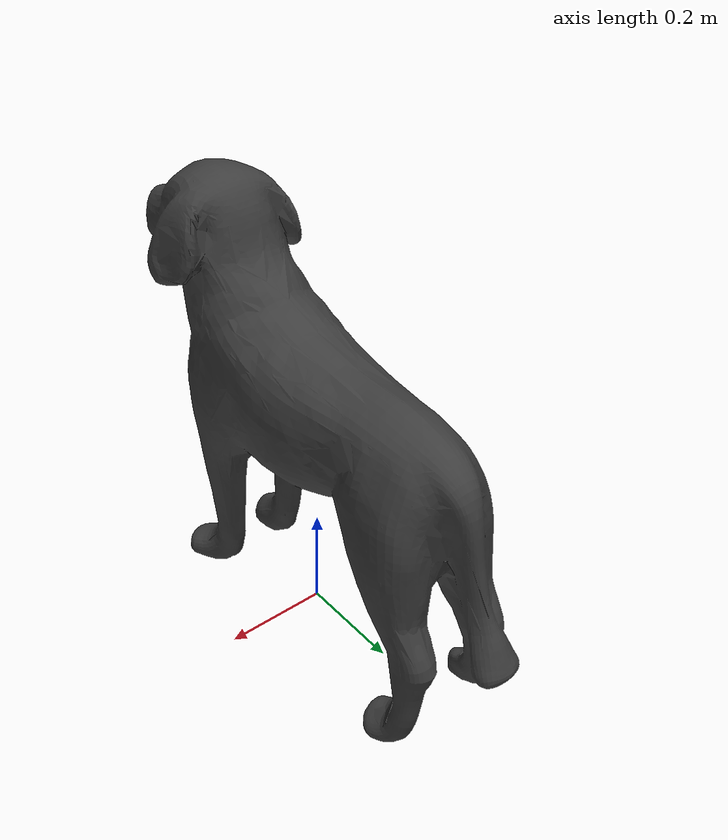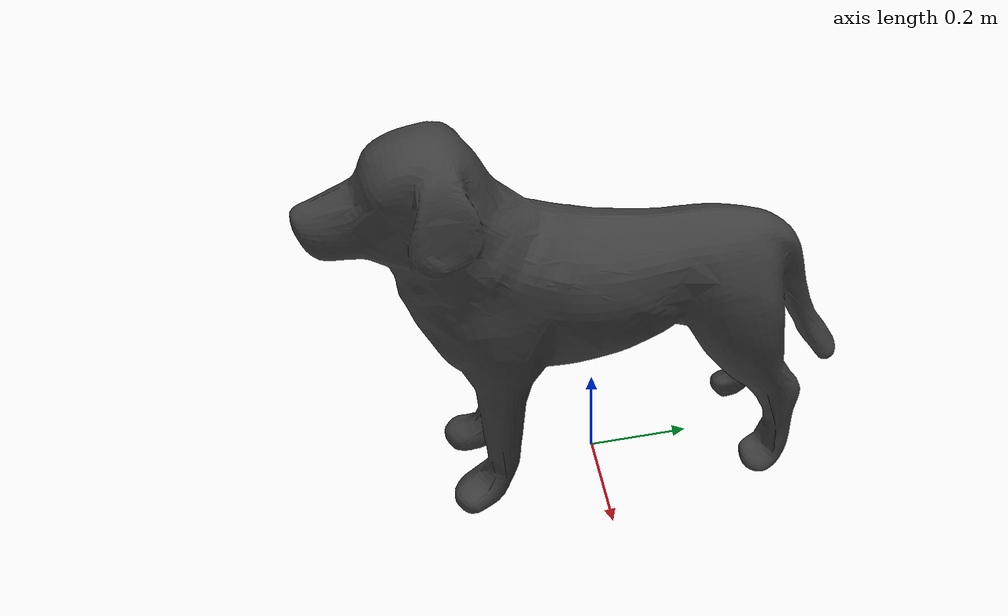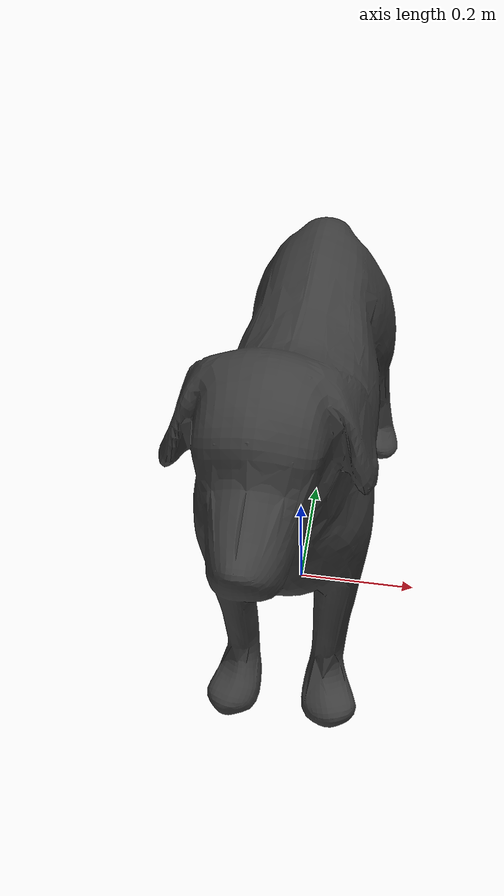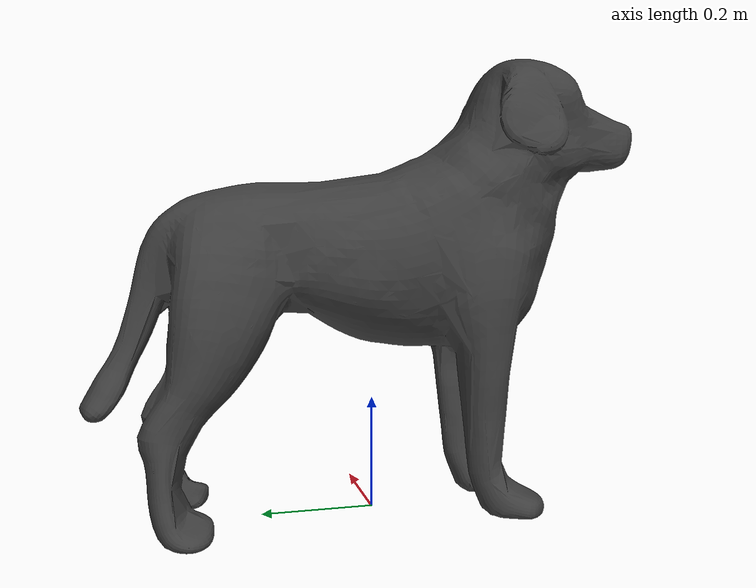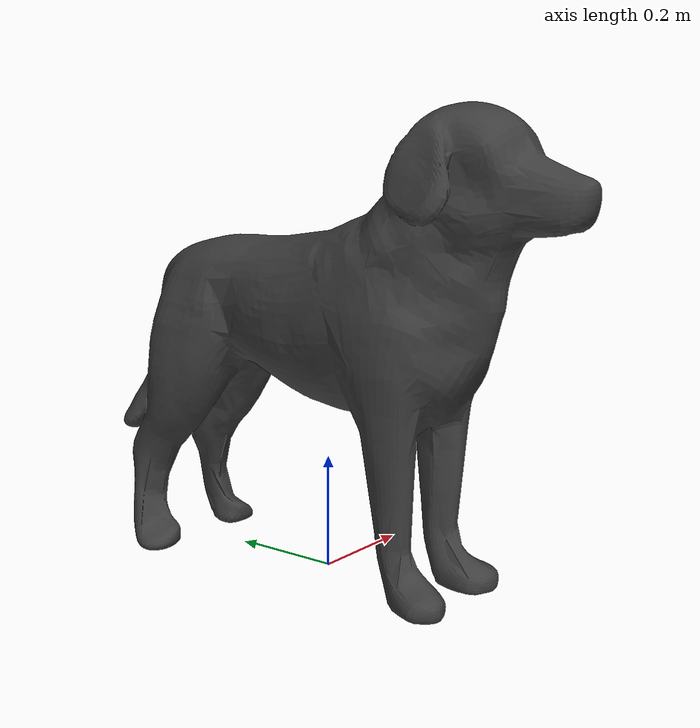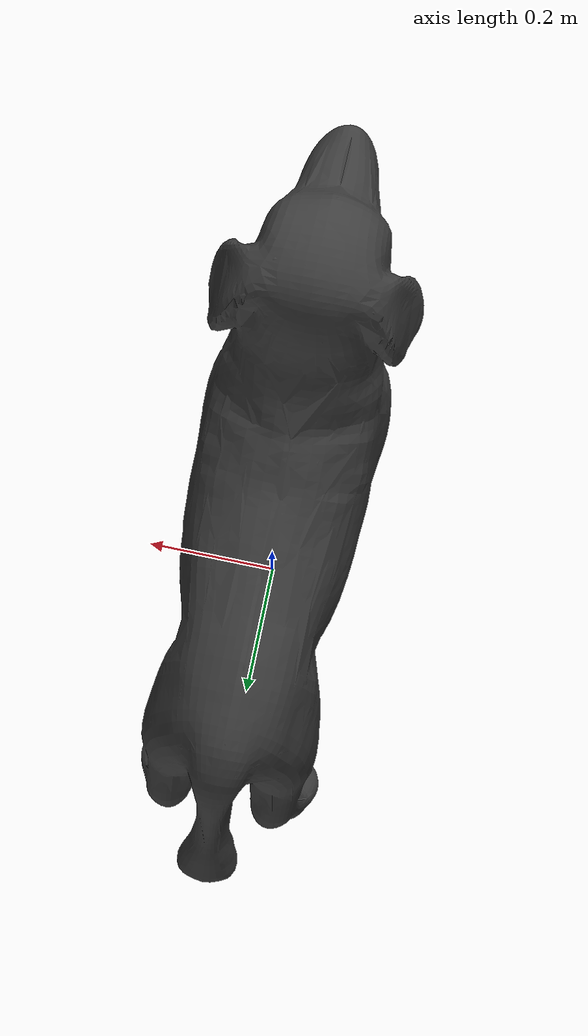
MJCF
<mujoco model="dustbin_pink">
  <asset>
  <texture file="/Users/hyunw3/robotics/robotics-safety/benchmark/robosuite/robosuite/models/assets/textures/ceramic.png" name="tex-dustbin_pink" type="2d" />
  <material name="dustbin_pink" reflectance="0.5" texrepeat="1 1" texture="tex-dustbin_pink" texuniform="false" />
  <mesh file="visual/model_normalized_0.obj" name="model_normalized_0_vis" scale="1.0 1.0 1.0" /><mesh file="collision/model_normalized_collision_22.obj" name="model_normalized_collision_22._coll" scale="1.0 1.0 1.0" /><mesh file="collision/model_normalized_collision_23.obj" name="model_normalized_collision_23._coll" scale="1.0 1.0 1.0" /><mesh file="collision/model_normalized_collision_21.obj" name="model_normalized_collision_21._coll" scale="1.0 1.0 1.0" /><mesh file="collision/model_normalized_collision_20.obj" name="model_normalized_collision_20._coll" scale="1.0 1.0 1.0" /><mesh file="collision/model_normalized_collision_24.obj" name="model_normalized_collision_24._coll" scale="1.0 1.0 1.0" /><mesh file="collision/model_normalized_collision_30.obj" name="model_normalized_collision_30._coll" scale="1.0 1.0 1.0" /><mesh file="collision/model_normalized_collision_18.obj" name="model_normalized_collision_18._coll" scale="1.0 1.0 1.0" /><mesh file="collision/model_normalized_collision_19.obj" name="model_normalized_collision_19._coll" scale="1.0 1.0 1.0" /><mesh file="collision/model_normalized_collision_31.obj" name="model_normalized_collision_31._coll" scale="1.0 1.0 1.0" /><mesh file="collision/model_normalized_collision_25.obj" name="model_normalized_collision_25._coll" scale="1.0 1.0 1.0" /><mesh file="collision/model_normalized_collision_27.obj" name="model_normalized_collision_27._coll" scale="1.0 1.0 1.0" /><mesh file="collision/model_normalized_collision_26.obj" name="model_normalized_collision_26._coll" scale="1.0 1.0 1.0" /><mesh file="collision/model_normalized_collision_9.obj" name="model_normalized_collision_9._coll" scale="1.0 1.0 1.0" /><mesh file="collision/model_normalized_collision_8.obj" name="model_normalized_collision_8._coll" scale="1.0 1.0 1.0" /><mesh file="collision/model_normalized_collision_6.obj" name="model_normalized_collision_6._coll" scale="1.0 1.0 1.0" /><mesh file="collision/model_normalized_collision_7.obj" name="model_normalized_collision_7._coll" scale="1.0 1.0 1.0" /><mesh file="collision/model_normalized_collision_5.obj" name="model_normalized_collision_5._coll" scale="1.0 1.0 1.0" /><mesh file="collision/model_normalized_collision_4.obj" name="model_normalized_collision_4._coll" scale="1.0 1.0 1.0" /><mesh file="collision/model_normalized_collision_0.obj" name="model_normalized_collision_0._coll" scale="1.0 1.0 1.0" /><mesh file="collision/model_normalized_collision_1.obj" name="model_normalized_collision_1._coll" scale="1.0 1.0 1.0" /><mesh file="collision/model_normalized_collision_3.obj" name="model_normalized_collision_3._coll" scale="1.0 1.0 1.0" /><mesh file="collision/model_normalized_collision_2.obj" name="model_normalized_collision_2._coll" scale="1.0 1.0 1.0" /><mesh file="collision/model_normalized_collision_17.obj" name="model_normalized_collision_17._coll" scale="1.0 1.0 1.0" /><mesh file="collision/model_normalized_collision_16.obj" name="model_normalized_collision_16._coll" scale="1.0 1.0 1.0" /><mesh file="collision/model_normalized_collision_28.obj" name="model_normalized_collision_28._coll" scale="1.0 1.0 1.0" /><mesh file="collision/model_normalized_collision_14.obj" name="model_normalized_collision_14._coll" scale="1.0 1.0 1.0" /><mesh file="collision/model_normalized_collision_15.obj" name="model_normalized_collision_15._coll" scale="1.0 1.0 1.0" /><mesh file="collision/model_normalized_collision_29.obj" name="model_normalized_collision_29._coll" scale="1.0 1.0 1.0" /><mesh file="collision/model_normalized_collision_11.obj" name="model_normalized_collision_11._coll" scale="1.0 1.0 1.0" /><mesh file="collision/model_normalized_collision_10.obj" name="model_normalized_collision_10._coll" scale="1.0 1.0 1.0" /><mesh file="collision/model_normalized_collision_12.obj" name="model_normalized_collision_12._coll" scale="1.0 1.0 1.0" /><mesh file="collision/model_normalized_collision_13.obj" name="model_normalized_collision_13._coll" scale="1.0 1.0 1.0" /><material name="material_0" specular="0.4000000000000001" shininess="0.001" rgba="0.23921569 0.23921569 0.23921569 1.0" /></asset>
  <worldbody>
    <body>
      <body name="object" pos="0 0 0.4">
        <geom solimp="0.998 0.998 0.001" solref="0.001 1" density="100" friction="0.95 0.3 0.1" type="mesh" mesh="model_normalized_0_vis" conaffinity="0" contype="0" group="1" material="material_0" />
      <inertial mass="1000" diaginertia="500 500 500" pos="0 0 0"/>
        <geom solimp="0.998 0.998 0.001" solref="0.001 1" density="100" friction="0.95 0.3 0.1" type="mesh" mesh="model_normalized_collision_22._coll" group="0" rgba="0.8 0.8 0.8 0.0" />
        <geom solimp="0.998 0.998 0.001" solref="0.001 1" density="100" friction="0.95 0.3 0.1" type="mesh" mesh="model_normalized_collision_23._coll" group="0" rgba="0.8 0.8 0.8 0.0" />
        <geom solimp="0.998 0.998 0.001" solref="0.001 1" density="100" friction="0.95 0.3 0.1" type="mesh" mesh="model_normalized_collision_21._coll" group="0" rgba="0.8 0.8 0.8 0.0" />
        <geom solimp="0.998 0.998 0.001" solref="0.001 1" density="100" friction="0.95 0.3 0.1" type="mesh" mesh="model_normalized_collision_20._coll" group="0" rgba="0.8 0.8 0.8 0.0" />
        <geom solimp="0.998 0.998 0.001" solref="0.001 1" density="100" friction="0.95 0.3 0.1" type="mesh" mesh="model_normalized_collision_24._coll" group="0" rgba="0.8 0.8 0.8 0.0" />
        <geom solimp="0.998 0.998 0.001" solref="0.001 1" density="100" friction="0.95 0.3 0.1" type="mesh" mesh="model_normalized_collision_30._coll" group="0" rgba="0.8 0.8 0.8 0.0" />
        <geom solimp="0.998 0.998 0.001" solref="0.001 1" density="100" friction="0.95 0.3 0.1" type="mesh" mesh="model_normalized_collision_18._coll" group="0" rgba="0.8 0.8 0.8 0.0" />
        <geom solimp="0.998 0.998 0.001" solref="0.001 1" density="100" friction="0.95 0.3 0.1" type="mesh" mesh="model_normalized_collision_19._coll" group="0" rgba="0.8 0.8 0.8 0.0" />
        <geom solimp="0.998 0.998 0.001" solref="0.001 1" density="100" friction="0.95 0.3 0.1" type="mesh" mesh="model_normalized_collision_31._coll" group="0" rgba="0.8 0.8 0.8 0.0" />
        <geom solimp="0.998 0.998 0.001" solref="0.001 1" density="100" friction="0.95 0.3 0.1" type="mesh" mesh="model_normalized_collision_25._coll" group="0" rgba="0.8 0.8 0.8 0.0" />
        <geom solimp="0.998 0.998 0.001" solref="0.001 1" density="100" friction="0.95 0.3 0.1" type="mesh" mesh="model_normalized_collision_27._coll" group="0" rgba="0.8 0.8 0.8 0.0" />
        <geom solimp="0.998 0.998 0.001" solref="0.001 1" density="100" friction="0.95 0.3 0.1" type="mesh" mesh="model_normalized_collision_26._coll" group="0" rgba="0.8 0.8 0.8 0.0" />
        <geom solimp="0.998 0.998 0.001" solref="0.001 1" density="100" friction="0.95 0.3 0.1" type="mesh" mesh="model_normalized_collision_9._coll" group="0" rgba="0.8 0.8 0.8 0.0" />
        <geom solimp="0.998 0.998 0.001" solref="0.001 1" density="100" friction="0.95 0.3 0.1" type="mesh" mesh="model_normalized_collision_8._coll" group="0" rgba="0.8 0.8 0.8 0.0" />
        <geom solimp="0.998 0.998 0.001" solref="0.001 1" density="100" friction="0.95 0.3 0.1" type="mesh" mesh="model_normalized_collision_6._coll" group="0" rgba="0.8 0.8 0.8 0.0" />
        <geom solimp="0.998 0.998 0.001" solref="0.001 1" density="100" friction="0.95 0.3 0.1" type="mesh" mesh="model_normalized_collision_7._coll" group="0" rgba="0.8 0.8 0.8 0.0" />
        <geom solimp="0.998 0.998 0.001" solref="0.001 1" density="100" friction="0.95 0.3 0.1" type="mesh" mesh="model_normalized_collision_5._coll" group="0" rgba="0.8 0.8 0.8 0.0" />
        <geom solimp="0.998 0.998 0.001" solref="0.001 1" density="100" friction="0.95 0.3 0.1" type="mesh" mesh="model_normalized_collision_4._coll" group="0" rgba="0.8 0.8 0.8 0.0" />
        <geom solimp="0.998 0.998 0.001" solref="0.001 1" density="100" friction="0.95 0.3 0.1" type="mesh" mesh="model_normalized_collision_0._coll" group="0" rgba="0.8 0.8 0.8 0.0" />
        <geom solimp="0.998 0.998 0.001" solref="0.001 1" density="100" friction="0.95 0.3 0.1" type="mesh" mesh="model_normalized_collision_1._coll" group="0" rgba="0.8 0.8 0.8 0.0" />
        <geom solimp="0.998 0.998 0.001" solref="0.001 1" density="100" friction="0.95 0.3 0.1" type="mesh" mesh="model_normalized_collision_3._coll" group="0" rgba="0.8 0.8 0.8 0.0" />
        <geom solimp="0.998 0.998 0.001" solref="0.001 1" density="100" friction="0.95 0.3 0.1" type="mesh" mesh="model_normalized_collision_2._coll" group="0" rgba="0.8 0.8 0.8 0.0" />
        <geom solimp="0.998 0.998 0.001" solref="0.001 1" density="100" friction="0.95 0.3 0.1" type="mesh" mesh="model_normalized_collision_17._coll" group="0" rgba="0.8 0.8 0.8 0.0" />
        <geom solimp="0.998 0.998 0.001" solref="0.001 1" density="100" friction="0.95 0.3 0.1" type="mesh" mesh="model_normalized_collision_16._coll" group="0" rgba="0.8 0.8 0.8 0.0" />
        <geom solimp="0.998 0.998 0.001" solref="0.001 1" density="100" friction="0.95 0.3 0.1" type="mesh" mesh="model_normalized_collision_28._coll" group="0" rgba="0.8 0.8 0.8 0.0" />
        <geom solimp="0.998 0.998 0.001" solref="0.001 1" density="100" friction="0.95 0.3 0.1" type="mesh" mesh="model_normalized_collision_14._coll" group="0" rgba="0.8 0.8 0.8 0.0" />
        <geom solimp="0.998 0.998 0.001" solref="0.001 1" density="100" friction="0.95 0.3 0.1" type="mesh" mesh="model_normalized_collision_15._coll" group="0" rgba="0.8 0.8 0.8 0.0" />
        <geom solimp="0.998 0.998 0.001" solref="0.001 1" density="100" friction="0.95 0.3 0.1" type="mesh" mesh="model_normalized_collision_29._coll" group="0" rgba="0.8 0.8 0.8 0.0" />
        <geom solimp="0.998 0.998 0.001" solref="0.001 1" density="100" friction="0.95 0.3 0.1" type="mesh" mesh="model_normalized_collision_11._coll" group="0" rgba="0.8 0.8 0.8 0.0" />
        <geom solimp="0.998 0.998 0.001" solref="0.001 1" density="100" friction="0.95 0.3 0.1" type="mesh" mesh="model_normalized_collision_10._coll" group="0" rgba="0.8 0.8 0.8 0.0" />
        <geom solimp="0.998 0.998 0.001" solref="0.001 1" density="100" friction="0.95 0.3 0.1" type="mesh" mesh="model_normalized_collision_12._coll" group="0" rgba="0.8 0.8 0.8 0.0" />
        <geom solimp="0.998 0.998 0.001" solref="0.001 1" density="100" friction="0.95 0.3 0.1" type="mesh" mesh="model_normalized_collision_13._coll" group="0" rgba="0.8 0.8 0.8 0.0" />
      </body>
      <site rgba="0 0 0 0" size="0.005" pos="-2.407379851021574e-10 2.5999699226897377e-08 -0.6978708326273693" name="bottom_site" />
      <site rgba="0 0 0 0" size="0.005" pos="-2.407379851021574e-10 2.5999699226897377e-08 0.5021291640022993" name="top_site" />
      <site rgba="0 0 0 0" size="0.005" pos="0.5075757557811655 0.5075757817808648 0.00212916568746499" name="horizontal_radius_site" />
    </body>
  </worldbody>
</mujoco>
